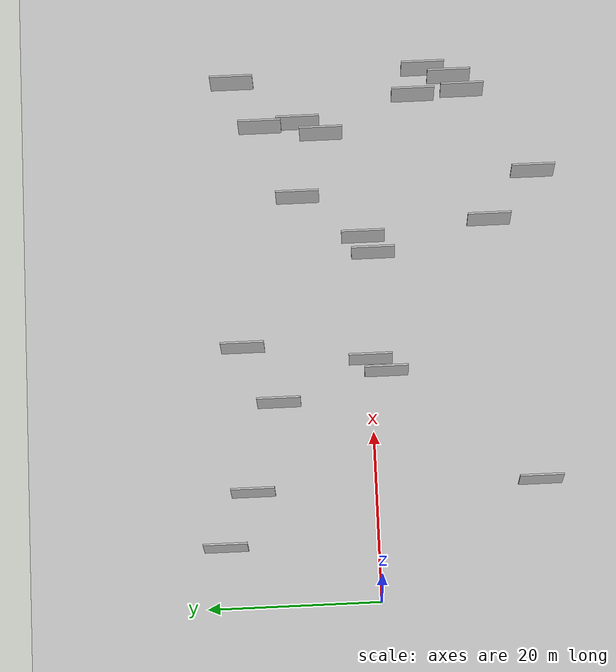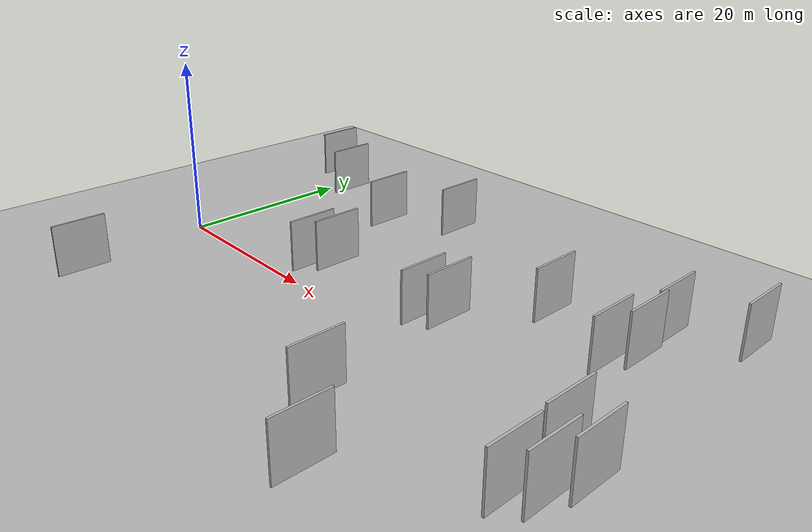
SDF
<?xml version="1.0" encoding="utf-8"?>

<sdf version="1.6">

   <world name="default">

      <gui fullscreen="0">

         <camera name="user_camera">

            <pose>-15 0 4.57585 0 0 0</pose>

            <view_controller>orbit</view_controller>

         </camera>

      </gui>

      <scene>

         <sky>

           <clouds>

             <speed>12</speed>

           </clouds>

         </sky>

         <ambient>0.4 0.4 0.4 1</ambient>

         <background>0.7 0.7 0.7 1</background>

         <shadows>1</shadows>

      </scene>

      <gravity>0 0 -9.8066</gravity>

      <magnetic_field>6e-06 2.3e-05 -4.2e-05</magnetic_field>

      <physics default="0" name="default_physics" type="ode">

         <ode>

            <solver>

               <type>quick</type>

               <iters>10</iters>

               <sor>1.0</sor>

               <use_dynamic_moi_rescaling>0</use_dynamic_moi_rescaling>

            </solver>

            <constraints>

               <cfm>0</cfm>

               <erp>0.2</erp>

               <contact_max_correcting_vel>100</contact_max_correcting_vel>

               <contact_surface_layer>0.001</contact_surface_layer>

            </constraints>

         </ode>

         <max_step_size>0.004</max_step_size>

         <real_time_factor>1</real_time_factor>

         <real_time_update_rate>250</real_time_update_rate>

      </physics>

      <light name="sun" type="directional">

         <cast_shadows>1</cast_shadows>

         <pose>0 0 10 0 0 0</pose>

         <diffuse>0.8 0.8 0.8 1</diffuse>

         <specular>0.2 0.2 0.2 1</specular>

         <attenuation>

            <range>1000</range>

            <constant>0.9</constant>

            <linear>0.01</linear>

            <quadratic>0.001</quadratic>

         </attenuation>

         <direction>-0.5 0.1 -0.9</direction>

      </light>

      <include>

         <name>ground_plane_1</name>

         <uri>model://HANNAS_ground_plane</uri>

         <pose>0 0 0  0 0 0</pose>

      </include>

      <include>

         <name>ground_plane_2</name>

         <uri>model://HANNAS_ground_plane</uri>

         <pose>100 0 0  0 0 0</pose>

      </include>

      <model name="HANNAS_wall_1">

         <static>1</static>

         <pose frame="">61.0505 14.8489 5.0 0.000000 0.000000 1.570796</pose>

         <link name="link">

            <pose frame="">0 0 2.50 0 0 0</pose>

            <collision name="collision">

               <geometry>

                  <box>

                     <size>5.00 0.2 5.00</size>

                  </box>

               </geometry>

               <max_contacts>10</max_contacts>

               <surface>

                  <contact>

                     <ode/>

                  </contact>

                  <bounce/>

                  <friction>

                     <torsional>

                        <ode/>

                     </torsional>

                     <ode/>

                  </friction>

               </surface>

            </collision>

            <visual name="visual">

               <cast_shadows>0</cast_shadows>

               <geometry>

                  <box>

                     <size>5.00 0.2 5.00</size>

                  </box>

               </geometry>

               <material>

                  <script>

                     <uri>model://HANNAS_wall/materials/scripts</uri>

                     <uri>model://HANNAS_wall/materials/textures</uri>

                     <name>vrc/HANNAS_wall</name>

                  </script>

               </material>

            </visual>

            <self_collide>0</self_collide>

            <enable_wind>0</enable_wind>

            <kinematic>0</kinematic>

         </link>

      </model>

      <model name="HANNAS_wall_2">

         <static>1</static>

         <pose frame="">60.7656 -10.6044 5.0 0.000000 0.000000 1.570796</pose>

         <link name="link">

            <pose frame="">0 0 2.50 0 0 0</pose>

            <collision name="collision">

               <geometry>

                  <box>

                     <size>5.00 0.2 5.00</size>

                  </box>

               </geometry>

               <max_contacts>10</max_contacts>

               <surface>

                  <contact>

                     <ode/>

                  </contact>

                  <bounce/>

                  <friction>

                     <torsional>

                        <ode/>

                     </torsional>

                     <ode/>

                  </friction>

               </surface>

            </collision>

            <visual name="visual">

               <cast_shadows>0</cast_shadows>

               <geometry>

                  <box>

                     <size>5.00 0.2 5.00</size>

                  </box>

               </geometry>

               <material>

                  <script>

                     <uri>model://HANNAS_wall/materials/scripts</uri>

                     <uri>model://HANNAS_wall/materials/textures</uri>

                     <name>vrc/HANNAS_wall</name>

                  </script>

               </material>

            </visual>

            <self_collide>0</self_collide>

            <enable_wind>0</enable_wind>

            <kinematic>0</kinematic>

         </link>

      </model>

      <model name="HANNAS_wall_3">

         <static>1</static>

         <pose frame="">27.0581 0.0580 5.0 0.000000 0.000000 1.570796</pose>

         <link name="link">

            <pose frame="">0 0 2.50 0 0 0</pose>

            <collision name="collision">

               <geometry>

                  <box>

                     <size>5.00 0.2 5.00</size>

                  </box>

               </geometry>

               <max_contacts>10</max_contacts>

               <surface>

                  <contact>

                     <ode/>

                  </contact>

                  <bounce/>

                  <friction>

                     <torsional>

                        <ode/>

                     </torsional>

                     <ode/>

                  </friction>

               </surface>

            </collision>

            <visual name="visual">

               <cast_shadows>0</cast_shadows>

               <geometry>

                  <box>

                     <size>5.00 0.2 5.00</size>

                  </box>

               </geometry>

               <material>

                  <script>

                     <uri>model://HANNAS_wall/materials/scripts</uri>

                     <uri>model://HANNAS_wall/materials/textures</uri>

                     <name>vrc/HANNAS_wall</name>

                  </script>

               </material>

            </visual>

            <self_collide>0</self_collide>

            <enable_wind>0</enable_wind>

            <kinematic>0</kinematic>

         </link>

      </model>

      <model name="HANNAS_wall_4">

         <static>1</static>

         <pose frame="">39.7021 -0.7969 5.0 0.000000 0.000000 1.570796</pose>

         <link name="link">

            <pose frame="">0 0 2.50 0 0 0</pose>

            <collision name="collision">

               <geometry>

                  <box>

                     <size>5.00 0.2 5.00</size>

                  </box>

               </geometry>

               <max_contacts>10</max_contacts>

               <surface>

                  <contact>

                     <ode/>

                  </contact>

                  <bounce/>

                  <friction>

                     <torsional>

                        <ode/>

                     </torsional>

                     <ode/>

                  </friction>

               </surface>

            </collision>

            <visual name="visual">

               <cast_shadows>0</cast_shadows>

               <geometry>

                  <box>

                     <size>5.00 0.2 5.00</size>

                  </box>

               </geometry>

               <material>

                  <script>

                     <uri>model://HANNAS_wall/materials/scripts</uri>

                     <uri>model://HANNAS_wall/materials/textures</uri>

                     <name>vrc/HANNAS_wall</name>

                  </script>

               </material>

            </visual>

            <self_collide>0</self_collide>

            <enable_wind>0</enable_wind>

            <kinematic>0</kinematic>

         </link>

      </model>

      <model name="HANNAS_wall_5">

         <static>1</static>

         <pose frame="">59.0199 -12.0743 5.0 0.000000 0.000000 1.570796</pose>

         <link name="link">

            <pose frame="">0 0 2.50 0 0 0</pose>

            <collision name="collision">

               <geometry>

                  <box>

                     <size>5.00 0.2 5.00</size>

                  </box>

               </geometry>

               <max_contacts>10</max_contacts>

               <surface>

                  <contact>

                     <ode/>

                  </contact>

                  <bounce/>

                  <friction>

                     <torsional>

                        <ode/>

                     </torsional>

                     <ode/>

                  </friction>

               </surface>

            </collision>

            <visual name="visual">

               <cast_shadows>0</cast_shadows>

               <geometry>

                  <box>

                     <size>5.00 0.2 5.00</size>

                  </box>

               </geometry>

               <material>

                  <script>

                     <uri>model://HANNAS_wall/materials/scripts</uri>

                     <uri>model://HANNAS_wall/materials/textures</uri>

                     <name>vrc/HANNAS_wall</name>

                  </script>

               </material>

            </visual>

            <self_collide>0</self_collide>

            <enable_wind>0</enable_wind>

            <kinematic>0</kinematic>

         </link>

      </model>

      <model name="HANNAS_wall_6">

         <static>1</static>

         <pose frame="">12.1341 -18.6609 5.0 0.000000 0.000000 1.570796</pose>

         <link name="link">

            <pose frame="">0 0 2.50 0 0 0</pose>

            <collision name="collision">

               <geometry>

                  <box>

                     <size>5.00 0.2 5.00</size>

                  </box>

               </geometry>

               <max_contacts>10</max_contacts>

               <surface>

                  <contact>

                     <ode/>

                  </contact>

                  <bounce/>

                  <friction>

                     <torsional>

                        <ode/>

                     </torsional>

                     <ode/>

                  </friction>

               </surface>

            </collision>

            <visual name="visual">

               <cast_shadows>0</cast_shadows>

               <geometry>

                  <box>

                     <size>5.00 0.2 5.00</size>

                  </box>

               </geometry>

               <material>

                  <script>

                     <uri>model://HANNAS_wall/materials/scripts</uri>

                     <uri>model://HANNAS_wall/materials/textures</uri>

                     <name>vrc/HANNAS_wall</name>

                  </script>

               </material>

            </visual>

            <self_collide>0</self_collide>

            <enable_wind>0</enable_wind>

            <kinematic>0</kinematic>

         </link>

      </model>

      <model name="HANNAS_wall_7">

         <static>1</static>

         <pose frame="">55.5164 11.7551 5.0 0.000000 0.000000 1.570796</pose>

         <link name="link">

            <pose frame="">0 0 2.50 0 0 0</pose>

            <collision name="collision">

               <geometry>

                  <box>

                     <size>5.00 0.2 5.00</size>

                  </box>

               </geometry>

               <max_contacts>10</max_contacts>

               <surface>

                  <contact>

                     <ode/>

                  </contact>

                  <bounce/>

                  <friction>

                     <torsional>

                        <ode/>

                     </torsional>

                     <ode/>

                  </friction>

               </surface>

            </collision>

            <visual name="visual">

               <cast_shadows>0</cast_shadows>

               <geometry>

                  <box>

                     <size>5.00 0.2 5.00</size>

                  </box>

               </geometry>

               <material>

                  <script>

                     <uri>model://HANNAS_wall/materials/scripts</uri>

                     <uri>model://HANNAS_wall/materials/textures</uri>

                     <name>vrc/HANNAS_wall</name>

                  </script>

               </material>

            </visual>

            <self_collide>0</self_collide>

            <enable_wind>0</enable_wind>

            <kinematic>0</kinematic>

         </link>

      </model>

      <model name="HANNAS_wall_8">

         <static>1</static>

         <pose frame="">46.7715 7.6808 5.0 0.000000 0.000000 1.570796</pose>

         <link name="link">

            <pose frame="">0 0 2.50 0 0 0</pose>

            <collision name="collision">

               <geometry>

                  <box>

                     <size>5.00 0.2 5.00</size>

                  </box>

               </geometry>

               <max_contacts>10</max_contacts>

               <surface>

                  <contact>

                     <ode/>

                  </contact>

                  <bounce/>

                  <friction>

                     <torsional>

                        <ode/>

                     </torsional>

                     <ode/>

                  </friction>

               </surface>

            </collision>

            <visual name="visual">

               <cast_shadows>0</cast_shadows>

               <geometry>

                  <box>

                     <size>5.00 0.2 5.00</size>

                  </box>

               </geometry>

               <material>

                  <script>

                     <uri>model://HANNAS_wall/materials/scripts</uri>

                     <uri>model://HANNAS_wall/materials/textures</uri>

                     <name>vrc/HANNAS_wall</name>

                  </script>

               </material>

            </visual>

            <self_collide>0</self_collide>

            <enable_wind>0</enable_wind>

            <kinematic>0</kinematic>

         </link>

      </model>

      <model name="HANNAS_wall_9">

         <static>1</static>

         <pose frame="">5.8239 17.3853 5.0 0.000000 0.000000 1.570796</pose>

         <link name="link">

            <pose frame="">0 0 2.50 0 0 0</pose>

            <collision name="collision">

               <geometry>

                  <box>

                     <size>5.00 0.2 5.00</size>

                  </box>

               </geometry>

               <max_contacts>10</max_contacts>

               <surface>

                  <contact>

                     <ode/>

                  </contact>

                  <bounce/>

                  <friction>

                     <torsional>

                        <ode/>

                     </torsional>

                     <ode/>

                  </friction>

               </surface>

            </collision>

            <visual name="visual">

               <cast_shadows>0</cast_shadows>

               <geometry>

                  <box>

                     <size>5.00 0.2 5.00</size>

                  </box>

               </geometry>

               <material>

                  <script>

                     <uri>model://HANNAS_wall/materials/scripts</uri>

                     <uri>model://HANNAS_wall/materials/textures</uri>

                     <name>vrc/HANNAS_wall</name>

                  </script>

               </material>

            </visual>

            <self_collide>0</self_collide>

            <enable_wind>0</enable_wind>

            <kinematic>0</kinematic>

         </link>

      </model>

      <model name="HANNAS_wall_10">

         <static>1</static>

         <pose frame="">43.1166 -14.4233 5.0 0.000000 0.000000 1.570796</pose>

         <link name="link">

            <pose frame="">0 0 2.50 0 0 0</pose>

            <collision name="collision">

               <geometry>

                  <box>

                     <size>5.00 0.2 5.00</size>

                  </box>

               </geometry>

               <max_contacts>10</max_contacts>

               <surface>

                  <contact>

                     <ode/>

                  </contact>

                  <bounce/>

                  <friction>

                     <torsional>

                        <ode/>

                     </torsional>

                     <ode/>

                  </friction>

               </surface>

            </collision>

            <visual name="visual">

               <cast_shadows>0</cast_shadows>

               <geometry>

                  <box>

                     <size>5.00 0.2 5.00</size>

                  </box>

               </geometry>

               <material>

                  <script>

                     <uri>model://HANNAS_wall/materials/scripts</uri>

                     <uri>model://HANNAS_wall/materials/textures</uri>

                     <name>vrc/HANNAS_wall</name>

                  </script>

               </material>

            </visual>

            <self_collide>0</self_collide>

            <enable_wind>0</enable_wind>

            <kinematic>0</kinematic>

         </link>

      </model>

      <model name="HANNAS_wall_11">

         <static>1</static>

         <pose frame="">54.3949 4.6365 5.0 0.000000 0.000000 1.570796</pose>

         <link name="link">

            <pose frame="">0 0 2.50 0 0 0</pose>

            <collision name="collision">

               <geometry>

                  <box>

                     <size>5.00 0.2 5.00</size>

                  </box>

               </geometry>

               <max_contacts>10</max_contacts>

               <surface>

                  <contact>

                     <ode/>

                  </contact>

                  <bounce/>

                  <friction>

                     <torsional>

                        <ode/>

                     </torsional>

                     <ode/>

                  </friction>

               </surface>

            </collision>

            <visual name="visual">

               <cast_shadows>0</cast_shadows>

               <geometry>

                  <box>

                     <size>5.00 0.2 5.00</size>

                  </box>

               </geometry>

               <material>

                  <script>

                     <uri>model://HANNAS_wall/materials/scripts</uri>

                     <uri>model://HANNAS_wall/materials/textures</uri>

                     <name>vrc/HANNAS_wall</name>

                  </script>

               </material>

            </visual>

            <self_collide>0</self_collide>

            <enable_wind>0</enable_wind>

            <kinematic>0</kinematic>

         </link>

      </model>

      <model name="HANNAS_wall_12">

         <static>1</static>

         <pose frame="">41.6851 0.2794 5.0 0.000000 0.000000 1.570796</pose>

         <link name="link">

            <pose frame="">0 0 2.50 0 0 0</pose>

            <collision name="collision">

               <geometry>

                  <box>

                     <size>5.00 0.2 5.00</size>

                  </box>

               </geometry>

               <max_contacts>10</max_contacts>

               <surface>

                  <contact>

                     <ode/>

                  </contact>

                  <bounce/>

                  <friction>

                     <torsional>

                        <ode/>

                     </torsional>

                     <ode/>

                  </friction>

               </surface>

            </collision>

            <visual name="visual">

               <cast_shadows>0</cast_shadows>

               <geometry>

                  <box>

                     <size>5.00 0.2 5.00</size>

                  </box>

               </geometry>

               <material>

                  <script>

                     <uri>model://HANNAS_wall/materials/scripts</uri>

                     <uri>model://HANNAS_wall/materials/textures</uri>

                     <name>vrc/HANNAS_wall</name>

                  </script>

               </material>

            </visual>

            <self_collide>0</self_collide>

            <enable_wind>0</enable_wind>

            <kinematic>0</kinematic>

         </link>

      </model>

      <model name="HANNAS_wall_13">

         <static>1</static>

         <pose frame="">58.7014 -6.3107 5.0 0.000000 0.000000 1.570796</pose>

         <link name="link">

            <pose frame="">0 0 2.50 0 0 0</pose>

            <collision name="collision">

               <geometry>

                  <box>

                     <size>5.00 0.2 5.00</size>

                  </box>

               </geometry>

               <max_contacts>10</max_contacts>

               <surface>

                  <contact>

                     <ode/>

                  </contact>

                  <bounce/>

                  <friction>

                     <torsional>

                        <ode/>

                     </torsional>

                     <ode/>

                  </friction>

               </surface>

            </collision>

            <visual name="visual">

               <cast_shadows>0</cast_shadows>

               <geometry>

                  <box>

                     <size>5.00 0.2 5.00</size>

                  </box>

               </geometry>

               <material>

                  <script>

                     <uri>model://HANNAS_wall/materials/scripts</uri>

                     <uri>model://HANNAS_wall/materials/textures</uri>

                     <name>vrc/HANNAS_wall</name>

                  </script>

               </material>

            </visual>

            <self_collide>0</self_collide>

            <enable_wind>0</enable_wind>

            <kinematic>0</kinematic>

         </link>

      </model>

      <model name="HANNAS_wall_14">

         <static>1</static>

         <pose frame="">61.8599 -7.5958 5.0 0.000000 0.000000 1.570796</pose>

         <link name="link">

            <pose frame="">0 0 2.50 0 0 0</pose>

            <collision name="collision">

               <geometry>

                  <box>

                     <size>5.00 0.2 5.00</size>

                  </box>

               </geometry>

               <max_contacts>10</max_contacts>

               <surface>

                  <contact>

                     <ode/>

                  </contact>

                  <bounce/>

                  <friction>

                     <torsional>

                        <ode/>

                     </torsional>

                     <ode/>

                  </friction>

               </surface>

            </collision>

            <visual name="visual">

               <cast_shadows>0</cast_shadows>

               <geometry>

                  <box>

                     <size>5.00 0.2 5.00</size>

                  </box>

               </geometry>

               <material>

                  <script>

                     <uri>model://HANNAS_wall/materials/scripts</uri>

                     <uri>model://HANNAS_wall/materials/textures</uri>

                     <name>vrc/HANNAS_wall</name>

                  </script>

               </material>

            </visual>

            <self_collide>0</self_collide>

            <enable_wind>0</enable_wind>

            <kinematic>0</kinematic>

         </link>

      </model>

      <model name="HANNAS_wall_15">

         <static>1</static>

         <pose frame="">48.7488 -19.8014 5.0 0.000000 0.000000 1.570796</pose>

         <link name="link">

            <pose frame="">0 0 2.50 0 0 0</pose>

            <collision name="collision">

               <geometry>

                  <box>

                     <size>5.00 0.2 5.00</size>

                  </box>

               </geometry>

               <max_contacts>10</max_contacts>

               <surface>

                  <contact>

                     <ode/>

                  </contact>

                  <bounce/>

                  <friction>

                     <torsional>

                        <ode/>

                     </torsional>

                     <ode/>

                  </friction>

               </surface>

            </collision>

            <visual name="visual">

               <cast_shadows>0</cast_shadows>

               <geometry>

                  <box>

                     <size>5.00 0.2 5.00</size>

                  </box>

               </geometry>

               <material>

                  <script>

                     <uri>model://HANNAS_wall/materials/scripts</uri>

                     <uri>model://HANNAS_wall/materials/textures</uri>

                     <name>vrc/HANNAS_wall</name>

                  </script>

               </material>

            </visual>

            <self_collide>0</self_collide>

            <enable_wind>0</enable_wind>

            <kinematic>0</kinematic>

         </link>

      </model>

      <model name="HANNAS_wall_16">

         <static>1</static>

         <pose frame="">25.5815 -1.7045 5.0 0.000000 0.000000 1.570796</pose>

         <link name="link">

            <pose frame="">0 0 2.50 0 0 0</pose>

            <collision name="collision">

               <geometry>

                  <box>

                     <size>5.00 0.2 5.00</size>

                  </box>

               </geometry>

               <max_contacts>10</max_contacts>

               <surface>

                  <contact>

                     <ode/>

                  </contact>

                  <bounce/>

                  <friction>

                     <torsional>

                        <ode/>

                     </torsional>

                     <ode/>

                  </friction>

               </surface>

            </collision>

            <visual name="visual">

               <cast_shadows>0</cast_shadows>

               <geometry>

                  <box>

                     <size>5.00 0.2 5.00</size>

                  </box>

               </geometry>

               <material>

                  <script>

                     <uri>model://HANNAS_wall/materials/scripts</uri>

                     <uri>model://HANNAS_wall/materials/textures</uri>

                     <name>vrc/HANNAS_wall</name>

                  </script>

               </material>

            </visual>

            <self_collide>0</self_collide>

            <enable_wind>0</enable_wind>

            <kinematic>0</kinematic>

         </link>

      </model>

      <model name="HANNAS_wall_17">

         <static>1</static>

         <pose frame="">22.3958 10.7607 5.0 0.000000 0.000000 1.570796</pose>

         <link name="link">

            <pose frame="">0 0 2.50 0 0 0</pose>

            <collision name="collision">

               <geometry>

                  <box>

                     <size>5.00 0.2 5.00</size>

                  </box>

               </geometry>

               <max_contacts>10</max_contacts>

               <surface>

                  <contact>

                     <ode/>

                  </contact>

                  <bounce/>

                  <friction>

                     <torsional>

                        <ode/>

                     </torsional>

                     <ode/>

                  </friction>

               </surface>

            </collision>

            <visual name="visual">

               <cast_shadows>0</cast_shadows>

               <geometry>

                  <box>

                     <size>5.00 0.2 5.00</size>

                  </box>

               </geometry>

               <material>

                  <script>

                     <uri>model://HANNAS_wall/materials/scripts</uri>

                     <uri>model://HANNAS_wall/materials/textures</uri>

                     <name>vrc/HANNAS_wall</name>

                  </script>

               </material>

            </visual>

            <self_collide>0</self_collide>

            <enable_wind>0</enable_wind>

            <kinematic>0</kinematic>

         </link>

      </model>

      <model name="HANNAS_wall_18">

         <static>1</static>

         <pose frame="">12.0474 14.0816 5.0 0.000000 0.000000 1.570796</pose>

         <link name="link">

            <pose frame="">0 0 2.50 0 0 0</pose>

            <collision name="collision">

               <geometry>

                  <box>

                     <size>5.00 0.2 5.00</size>

                  </box>

               </geometry>

               <max_contacts>10</max_contacts>

               <surface>

                  <contact>

                     <ode/>

                  </contact>

                  <bounce/>

                  <friction>

                     <torsional>

                        <ode/>

                     </torsional>

                     <ode/>

                  </friction>

               </surface>

            </collision>

            <visual name="visual">

               <cast_shadows>0</cast_shadows>

               <geometry>

                  <box>

                     <size>5.00 0.2 5.00</size>

                  </box>

               </geometry>

               <material>

                  <script>

                     <uri>model://HANNAS_wall/materials/scripts</uri>

                     <uri>model://HANNAS_wall/materials/textures</uri>

                     <name>vrc/HANNAS_wall</name>

                  </script>

               </material>

            </visual>

            <self_collide>0</self_collide>

            <enable_wind>0</enable_wind>

            <kinematic>0</kinematic>

         </link>

      </model>

      <model name="HANNAS_wall_19">

         <static>1</static>

         <pose frame="">55.8211 7.2787 5.0 0.000000 0.000000 1.570796</pose>

         <link name="link">

            <pose frame="">0 0 2.50 0 0 0</pose>

            <collision name="collision">

               <geometry>

                  <box>

                     <size>5.00 0.2 5.00</size>

                  </box>

               </geometry>

               <max_contacts>10</max_contacts>

               <surface>

                  <contact>

                     <ode/>

                  </contact>

                  <bounce/>

                  <friction>

                     <torsional>

                        <ode/>

                     </torsional>

                     <ode/>

                  </friction>

               </surface>

            </collision>

            <visual name="visual">

               <cast_shadows>0</cast_shadows>

               <geometry>

                  <box>

                     <size>5.00 0.2 5.00</size>

                  </box>

               </geometry>

               <material>

                  <script>

                     <uri>model://HANNAS_wall/materials/scripts</uri>

                     <uri>model://HANNAS_wall/materials/textures</uri>

                     <name>vrc/HANNAS_wall</name>

                  </script>

               </material>

            </visual>

            <self_collide>0</self_collide>

            <enable_wind>0</enable_wind>

            <kinematic>0</kinematic>

         </link>

      </model>

      <model name="HANNAS_wall_20">

         <static>1</static>

         <pose frame="">29.0383 14.6882 5.0 0.000000 0.000000 1.570796</pose>

         <link name="link">

            <pose frame="">0 0 2.50 0 0 0</pose>

            <collision name="collision">

               <geometry>

                  <box>

                     <size>5.00 0.2 5.00</size>

                  </box>

               </geometry>

               <max_contacts>10</max_contacts>

               <surface>

                  <contact>

                     <ode/>

                  </contact>

                  <bounce/>

                  <friction>

                     <torsional>

                        <ode/>

                     </torsional>

                     <ode/>

                  </friction>

               </surface>

            </collision>

            <visual name="visual">

               <cast_shadows>0</cast_shadows>

               <geometry>

                  <box>

                     <size>5.00 0.2 5.00</size>

                  </box>

               </geometry>

               <material>

                  <script>

                     <uri>model://HANNAS_wall/materials/scripts</uri>

                     <uri>model://HANNAS_wall/materials/textures</uri>

                     <name>vrc/HANNAS_wall</name>

                  </script>

               </material>

            </visual>

            <self_collide>0</self_collide>

            <enable_wind>0</enable_wind>

            <kinematic>0</kinematic>

         </link>

      </model>

   </world>

</sdf>

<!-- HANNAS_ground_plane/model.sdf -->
<sdf version="1.4">
<model name="HANNAS_ground_plane">
  <static>true</static>
    <link name="link">
      <collision name="collision">
        <geometry>
          <plane>
            <normal>0 0 1</normal>
            <size>1000 1000</size>
          </plane>
        </geometry>
        <surface>
          <friction>
            <ode>
              <mu>100</mu>
              <mu2>50</mu2>
            </ode>
          </friction>
        </surface>
      </collision>
      <visual name="visual">
        <cast_shadows>false</cast_shadows>
        <geometry>
          <plane>
            <normal>0 0 1</normal>
            <size>1000 1000</size>
          </plane>
        </geometry>
        <material>
          <script>
            <uri>model://HANNAS_ground_plane/materials/scripts/HANNAS_ground_plane.material</uri>
	    <uri>model://HANNAS_ground_plane/materials/textures</uri>
            <name>HANNASGroundPlane/Image</name>
          </script>
        </material>
      </visual>
    </link>
  </model>
</sdf>
